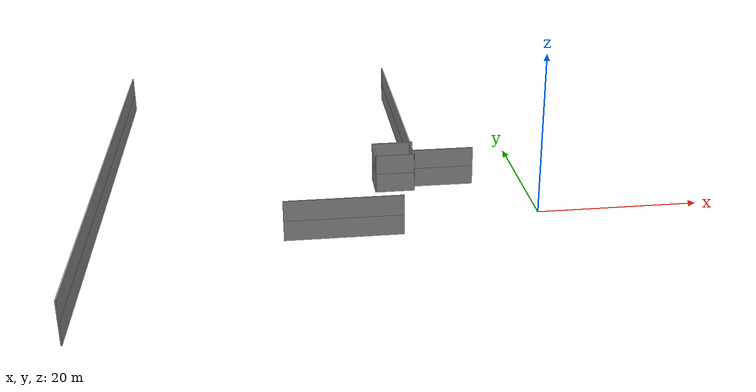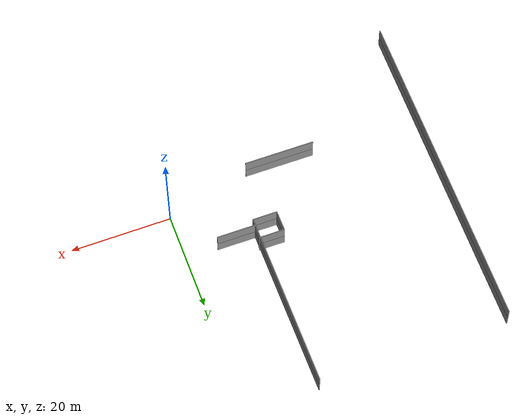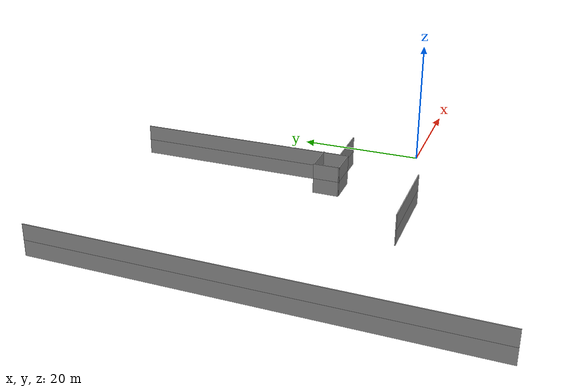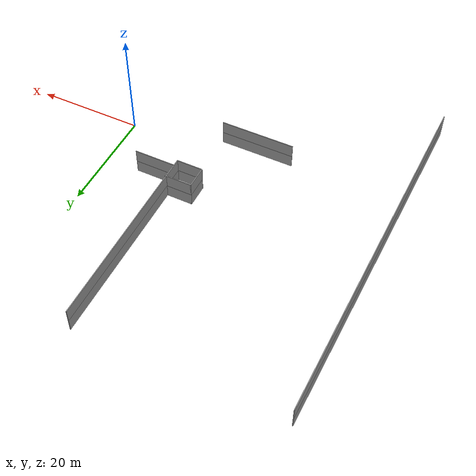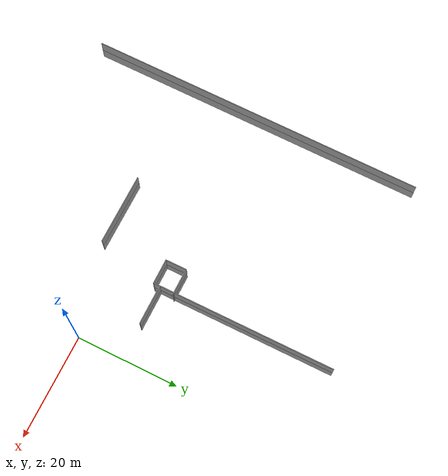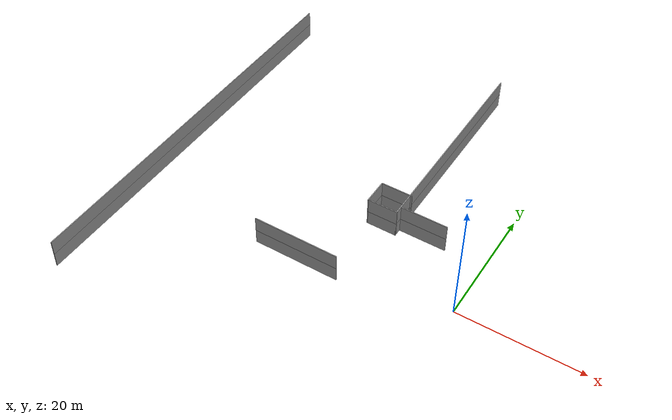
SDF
<sdf version="1.6">
 <model name="new_building">
  <pose>1.10912 -6.88825 0 0 -0 0</pose>
  <link name="Wall_100">
   <collision name="Wall_100_Collision">
    <geometry><box><size>5 0.15 2.5</size></box></geometry>
    <pose>0 0 1.25 0 -0 0</pose>
   </collision>
   <visual name="Wall_100_Visual">
    <pose>0 0 1.25 0 -0 0</pose>
    <geometry><box><size>5 0.15 2.5</size></box></geometry>
    <material>
     <script><uri>file://media/materials/scripts/gazebo.material</uri><name>Gazebo/Grey</name></script>
     <ambient>1 1 1 1</ambient>
    </material>
    <meta><layer>1</layer></meta>
   </visual>
   <pose>-17.6842 15.2156 2.5 0 -0 3.14159</pose>
  </link>
  <link name="Wall_101">
   <collision name="Wall_101_Collision">
    <geometry><box><size>4.25 0.15 2.5</size></box></geometry>
    <pose>0 0 1.25 0 -0 0</pose>
   </collision>
   <visual name="Wall_101_Visual">
    <pose>0 0 1.25 0 -0 0</pose>
    <geometry><box><size>4.25 0.15 2.5</size></box></geometry>
    <material>
     <script><uri>file://media/materials/scripts/gazebo.material</uri><name>Gazebo/Grey</name></script>
     <ambient>1 1 1 1</ambient>
    </material>
    <meta><layer>1</layer></meta>
   </visual>
   <pose>-20.1092 17.2656 2.5 0 -0 1.5708</pose>
  </link>
  <link name="Wall_102">
   <collision name="Wall_102_Collision">
    <geometry><box><size>5.25 0.15 2.5</size></box></geometry>
    <pose>0 0 1.25 0 -0 0</pose>
   </collision>
   <visual name="Wall_102_Visual">
    <pose>0 0 1.25 0 -0 0</pose>
    <geometry><box><size>5.25 0.15 2.5</size></box></geometry>
    <material>
     <script><uri>file://media/materials/scripts/gazebo.material</uri><name>Gazebo/Grey</name></script>
     <ambient>1 1 1 1</ambient>
    </material>
    <meta><layer>1</layer></meta>
   </visual>
   <pose>-17.5592 19.3156 2.5 0 -0 0</pose>
  </link>
  <link name="Wall_105">
   <collision name="Wall_105_Collision">
    <geometry><box><size>7.75 0.15 2.5</size></box></geometry>
    <pose>0 0 1.25 0 -0 0</pose>
   </collision>
   <visual name="Wall_105_Visual">
    <pose>0 0 1.25 0 -0 0</pose>
    <geometry><box><size>7.75 0.15 2.5</size></box></geometry>
    <material>
     <script><uri>file://media/materials/scripts/gazebo.material</uri><name>Gazebo/Grey</name></script>
     <ambient>1 1 1 1</ambient>
    </material>
    <meta><layer>1</layer></meta>
   </visual>
   <pose>-11.3933 16.4836 2.5 0 -0 0</pose>
  </link>
  <link name="Wall_16">
   <collision name="Wall_16_Collision">
    <geometry><box><size>14 0.15 2.5</size></box></geometry>
    <pose>0 0 1.25 0 -0 0</pose>
   </collision>
   <visual name="Wall_16_Visual">
    <pose>0 0 1.25 0 -0 0</pose>
    <geometry><box><size>14 0.15 2.5</size></box></geometry>
    <material>
     <script><uri>file://media/materials/scripts/gazebo.material</uri><name>Gazebo/Grey</name></script>
     <ambient>1 1 1 1</ambient>
    </material>
    <meta><layer>0</layer></meta>
   </visual>
   <pose>-25.148 3.03438 0 0 -0 3.14159</pose>
  </link>
  <link name="Wall_32">
   <collision name="Wall_32_Collision">
    <geometry><box><size>35.75 0.15 2.5</size></box></geometry>
    <pose>0 0 1.25 0 -0 0</pose>
   </collision>
   <visual name="Wall_32_Visual">
    <pose>0 0 1.25 0 -0 0</pose>
    <geometry><box><size>35.75 0.15 2.5</size></box></geometry>
    <material>
     <script><uri>file://media/materials/scripts/gazebo.material</uri><name>Gazebo/Grey</name></script>
     <ambient>1 1 1 1</ambient>
    </material>
    <meta><layer>0</layer></meta>
   </visual>
   <pose>-15.2592 33.0156 0 0 -0 -1.5708</pose>
  </link>
  <link name="Wall_33">
   <collision name="Wall_33_Collision">
    <geometry><box><size>5 0.15 2.5</size></box></geometry>
    <pose>0 0 1.25 0 -0 0</pose>
   </collision>
   <visual name="Wall_33_Visual">
    <pose>0 0 1.25 0 -0 0</pose>
    <geometry><box><size>5 0.15 2.5</size></box></geometry>
    <material>
     <script><uri>file://media/materials/scripts/gazebo.material</uri><name>Gazebo/Grey</name></script>
     <ambient>1 1 1 1</ambient>
    </material>
    <meta><layer>0</layer></meta>
   </visual>
   <pose>-17.6842 15.2156 0 0 -0 3.14159</pose>
  </link>
  <link name="Wall_34">
   <collision name="Wall_34_Collision">
    <geometry><box><size>4.25 0.15 2.5</size></box></geometry>
    <pose>0 0 1.25 0 -0 0</pose>
   </collision>
   <visual name="Wall_34_Visual">
    <pose>0 0 1.25 0 -0 0</pose>
    <geometry><box><size>4.25 0.15 2.5</size></box></geometry>
    <material>
     <script><uri>file://media/materials/scripts/gazebo.material</uri><name>Gazebo/Grey</name></script>
     <ambient>1 1 1 1</ambient>
    </material>
    <meta><layer>0</layer></meta>
   </visual>
   <pose>-20.1092 17.2656 0 0 -0 1.5708</pose>
  </link>
  <link name="Wall_35">
   <collision name="Wall_35_Collision">
    <geometry><box><size>5.25 0.15 2.5</size></box></geometry>
    <pose>0 0 1.25 0 -0 0</pose>
   </collision>
   <visual name="Wall_35_Visual">
    <pose>0 0 1.25 0 -0 0</pose>
    <geometry><box><size>5.25 0.15 2.5</size></box></geometry>
    <material>
     <script><uri>file://media/materials/scripts/gazebo.material</uri><name>Gazebo/Grey</name></script>
     <ambient>1 1 1 1</ambient>
    </material>
    <meta><layer>0</layer></meta>
   </visual>
   <pose>-17.5592 19.3156 0 0 -0 0</pose>
  </link>
  <link name="Wall_45">
   <collision name="Wall_45_Collision">
    <geometry><box><size>7.75 0.15 2.5</size></box></geometry>
    <pose>0 0 1.25 0 -0 0</pose>
   </collision>
   <visual name="Wall_45_Visual">
    <pose>0 0 1.25 0 -0 0</pose>
    <geometry><box><size>7.75 0.15 2.5</size></box></geometry>
    <material>
     <script><uri>file://media/materials/scripts/gazebo.material</uri><name>Gazebo/Grey</name></script>
     <ambient>1 1 1 1</ambient>
    </material>
    <meta><layer>0</layer></meta>
   </visual>
   <pose>-11.3933 16.4836 0 0 -0 0</pose>
  </link>
  <link name="Wall_8">
   <collision name="Wall_8_Collision">
    <geometry><box><size>67.0091 0.15 2.5</size></box></geometry>
    <pose>0 0 1.25 0 -0 0</pose>
   </collision>
   <visual name="Wall_8_Visual">
    <pose>0 0 1.25 0 -0 0</pose>
    <geometry><box><size>67.0091 0.15 2.5</size></box></geometry>
    <material>
     <script><uri>file://media/materials/scripts/gazebo.material</uri><name>Gazebo/Grey</name></script>
     <ambient>1 1 1 1</ambient>
    </material>
    <meta><layer>0</layer></meta>
   </visual>
   <pose>-53.7444 16.8874 0 0 -0 -1.5819</pose>
  </link>
  <link name="Wall_89">
   <collision name="Wall_89_Collision">
    <geometry><box><size>67.0091 0.15 2.5</size></box></geometry>
    <pose>0 0 1.25 0 -0 0</pose>
   </collision>
   <visual name="Wall_89_Visual">
    <pose>0 0 1.25 0 -0 0</pose>
    <geometry><box><size>67.0091 0.15 2.5</size></box></geometry>
    <material>
     <script><uri>file://media/materials/scripts/gazebo.material</uri><name>Gazebo/Grey</name></script>
     <ambient>1 1 1 1</ambient>
    </material>
    <meta><layer>1</layer></meta>
   </visual>
   <pose>-53.7444 16.8874 2.5 0 -0 -1.5819</pose>
  </link>
  <link name="Wall_93">
   <collision name="Wall_93_Collision">
    <geometry><box><size>14 0.15 2.5</size></box></geometry>
    <pose>0 0 1.25 0 -0 0</pose>
   </collision>
   <visual name="Wall_93_Visual">
    <pose>0 0 1.25 0 -0 0</pose>
    <geometry><box><size>14 0.15 2.5</size></box></geometry>
    <material>
     <script><uri>file://media/materials/scripts/gazebo.material</uri><name>Gazebo/Grey</name></script>
     <ambient>1 1 1 1</ambient>
    </material>
    <meta><layer>1</layer></meta>
   </visual>
   <pose>-25.148 3.03438 2.5 0 -0 3.14159</pose>
  </link>
  <link name="Wall_99">
   <collision name="Wall_99_Collision">
    <geometry><box><size>35.75 0.15 2.5</size></box></geometry>
    <pose>0 0 1.25 0 -0 0</pose>
   </collision>
   <visual name="Wall_99_Visual">
    <pose>0 0 1.25 0 -0 0</pose>
    <geometry><box><size>35.75 0.15 2.5</size></box></geometry>
    <material>
     <script><uri>file://media/materials/scripts/gazebo.material</uri><name>Gazebo/Grey</name></script>
     <ambient>1 1 1 1</ambient>
    </material>
    <meta><layer>1</layer></meta>
   </visual>
   <pose>-15.2592 33.0156 2.5 0 -0 -1.5708</pose>
  </link>
  <static>1</static>
 </model>
</sdf>
